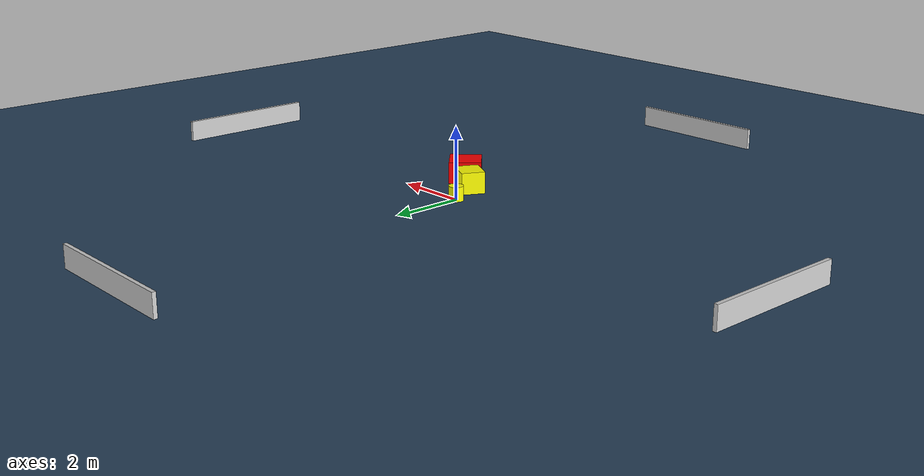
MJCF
<?xml version="1.0" ?>
<mujoco model="generated_environment">
  <option timestep="0.01" integrator="RK4" cone="elliptic"/>
  <default>
    <geom density="1"/>
  </default>
  <asset>
    <texture builtin="gradient" height="3072" name="skybox" rgb1="0.3 0.5 0.7" rgb2="0 0 0" type="skybox" width="512"/>
    <texture builtin="checker" height="300" name="groundplane" rgb1="0.2 0.3 0.4" rgb2="0.1 0.2 0.3" type="2d" width="300"/>
    <material name="groundplane" reflectance="0.2" texrepeat="5 5" texture="groundplane"/>
  </asset>
  <worldbody>
    <light dir="0 0 -1" directional="true" pos="0 0 1.5"/>
    <geom condim="3" friction="0.5 0.005 0.001" material="groundplane" name="floor" pos="0 0 0" size="0 0 0.05" type="plane"/>
    <body name="walls">
      <geom name="wall_1" condim="4" pos="-10.0 0.0 0.3" rgba="0.800000011920929 0.800000011920929 0.800000011920929 1.0" size="0.05 2.0 0.3" type="box"/>
      <geom name="wall_2" condim="4" pos="10.0 0.0 0.3" rgba="0.800000011920929 0.800000011920929 0.800000011920929 1.0" size="0.05 2.0 0.3" type="box"/>
      <geom name="wall_3" condim="4" pos="0.0 -10.0 0.3" rgba="0.800000011920929 0.800000011920929 0.800000011920929 1.0" size="2.0 0.05 0.3" type="box"/>
      <geom name="wall_4" condim="4" pos="0.0 10.0 0.3" rgba="0.800000011920929 0.800000011920929 0.800000011920929 1.0" size="2.0 0.05 0.3" type="box"/>
    </body>
    <body name="robot">
      <joint name="joint_x" type="slide" pos="0 0 0" axis="1 0 0"/>
      <joint name="joint_y" type="slide" pos="0 0 0" axis="0 1 0"/>
      <geom name="robot" type="cylinder" pos="0.0 0.0 0.2" size="0.2 0.2 0.0" mass="5.0" friction="1.0 0.005 0.0001" condim="4" rgba="1.0 1.0 0.0 1.0"/>
    </body>
    <body name="obstacle_1_movable">
      <geom name="obstacle_1_movable" condim="4" pos="0.40327796009594913 -0.8527568022358826 0.3" euler="0 0 243.26436836166636" friction="0.0 0.005 0.001" rgba="1.0 1.0 0.0 1.0" size="0.32777727945026114 0.3660699972619391 0.3" type="box" mass="0.1"/>
      <joint type="free"/>
    </body>
    <body name="obstacle_2_static">
      <geom name="obstacle_2_static" condim="4" pos="1.2767782158146095 -1.4836278251698751 0.3" euler="0 0 226.25143518400398" friction="0.0 0.005 0.001" rgba="1.0 0.0 0.0 1.0" size="0.44411466472294536 0.43198684079750455 0.3" type="box"/>
    </body>
  </worldbody>
  <actuator>
    <motor name="actuator_x" joint="joint_x" gear="1" ctrlrange="-1 1"/>
    <motor name="actuator_y" joint="joint_y" gear="1" ctrlrange="-1 1"/>
  </actuator>
</mujoco>
